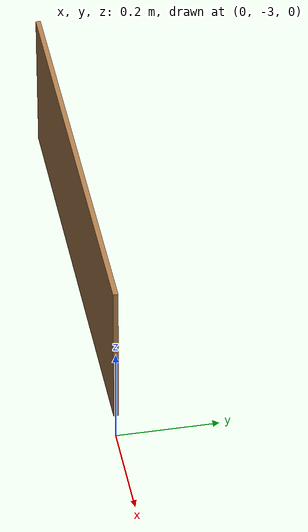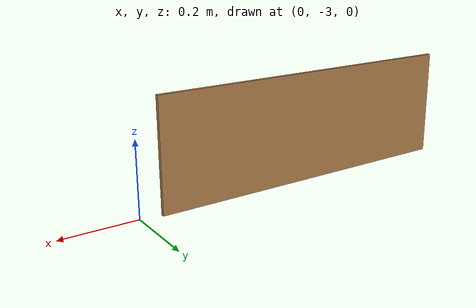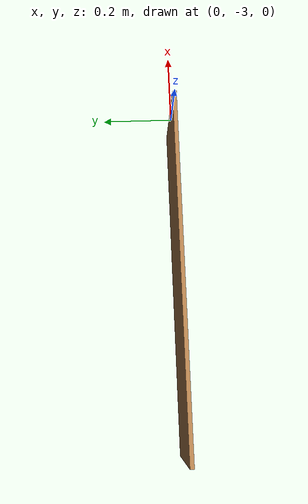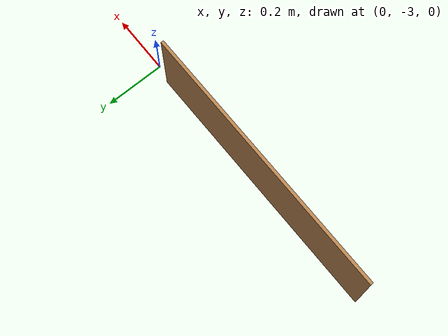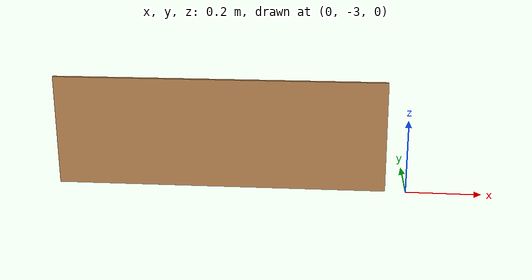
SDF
<?xml version='1.0'?>
<sdf version='1.7'>
  <model name='0_9m'>
    <pose>-0.4775 -1.4975 0 0 -0 0</pose>
    <link name='Wall_2'>
      <collision name='Wall_2_Collision'>
        <geometry>
          <box>
            <size>0.9 0.01 0.3</size>
          </box>
        </geometry>
        <pose>0 0 0.15 0 -0 0</pose>
      </collision>
      <visual name='Wall_2_Visual'>
        <pose>0 0 0.15 0 -0 0</pose>
        <geometry>
          <box>
            <size>0.9 0.01 0.3</size>
          </box>
        </geometry>
        <material>
          <script>
            <uri>file://media/materials/scripts/gazebo.material</uri>
            <name>Gazebo/Wood</name>
          </script>
          <ambient>1 1 1 1</ambient>
        </material>
        <meta>
          <layer>0</layer>
        </meta>
      </visual>
      <pose>-0.0275 -1.4925 0 0 -0 0</pose>
    </link>
    <static>1</static>
  </model>
</sdf>
